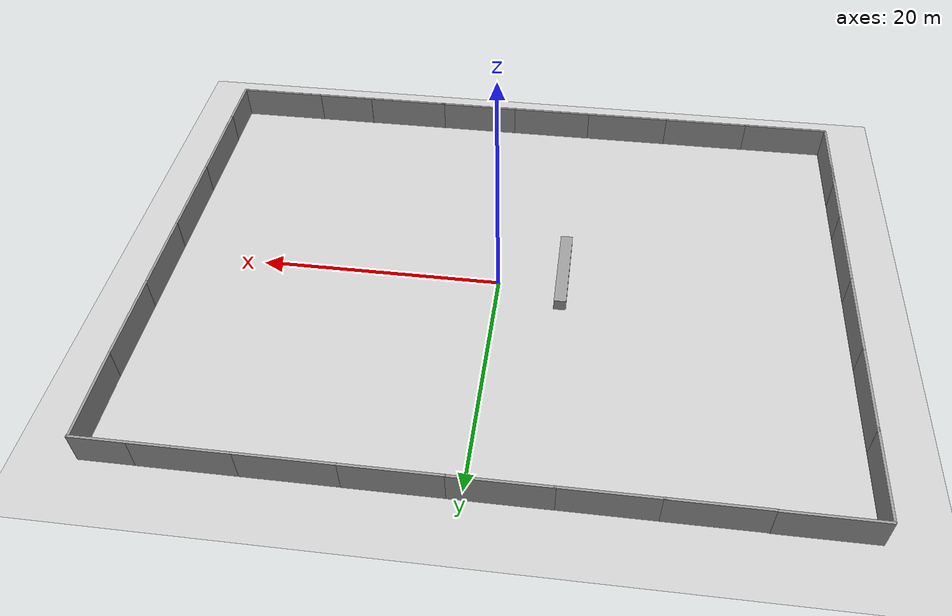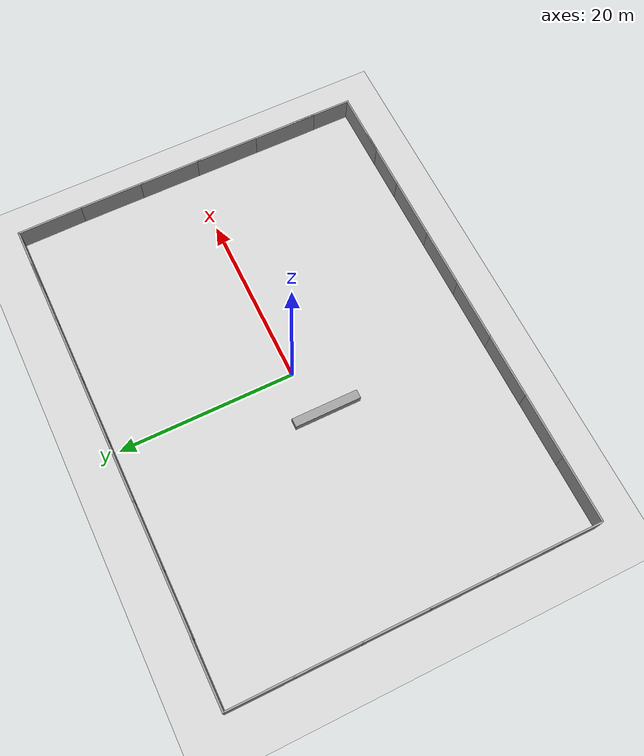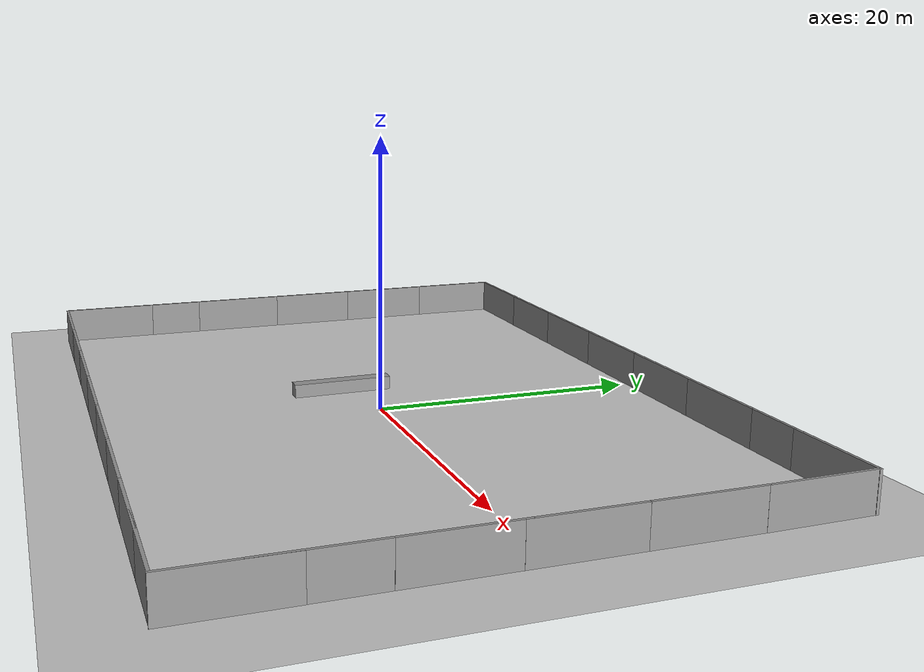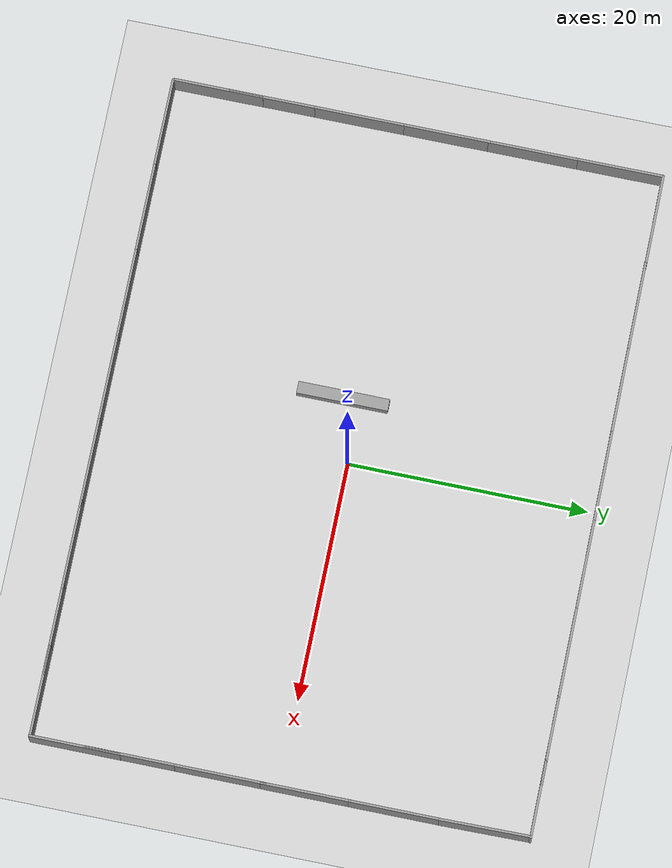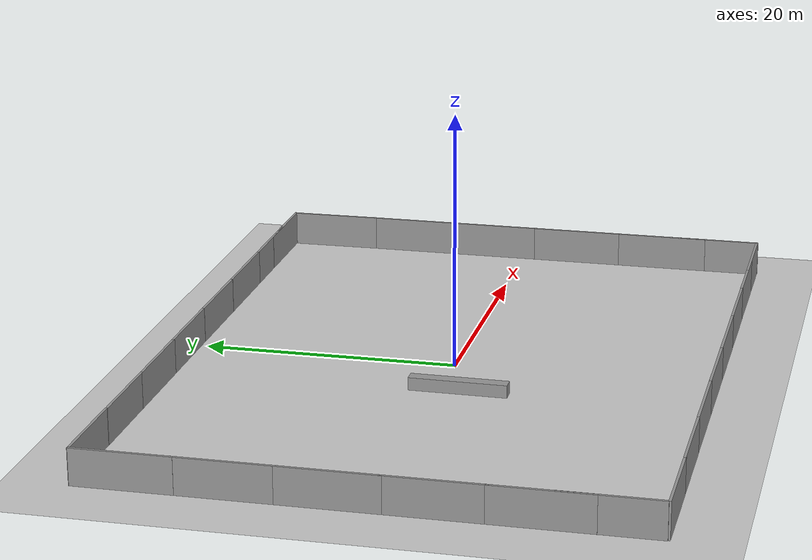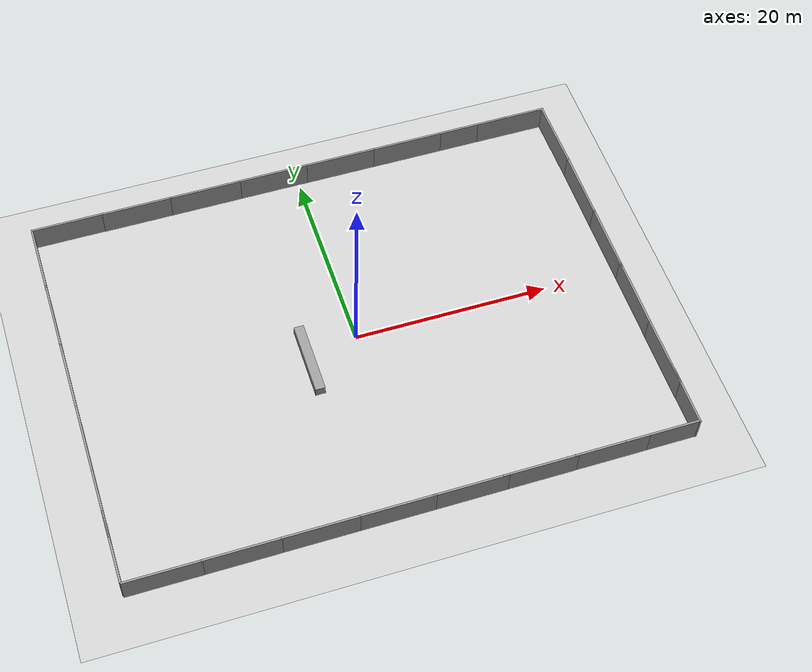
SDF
<sdf version="1.6">
 <world name="default">
  <light name="sun" type="directional">
   <pose>0 0 10 0 -0 0</pose>
   <diffuse>0.8 0.8 0.8 1</diffuse>
   <specular>0.2 0.2 0.2 1</specular>
   <attenuation>
    <range>1000</range>
    <constant>0.9</constant>
    <linear>0.01</linear>
    <quadratic>0.001</quadratic>
   </attenuation>
   <direction>-0.5 0.1 -0.9</direction>
  </light>
  <model name="ground_plane">
   <static>1</static>
   <link name="link">
    <collision name="collision">
     <geometry><plane><normal>0 0 1</normal><size>58 45</size></plane></geometry>
     <surface><friction><ode><mu>100</mu><mu2>50</mu2></ode></friction></surface>
    </collision>
    <visual name="visual">
     <cast_shadows>0</cast_shadows>
     <geometry><plane><normal>0 0 1</normal><size>58 45</size></plane></geometry>
     <material>
      <script><uri>file://media/materials/scripts/gazebo.material</uri><name>Gazebo/Grey</name></script>
     </material>
    </visual>
   </link>
  </model>
  <gravity>0 0 -9.8</gravity>
  <magnetic_field>6e-06 2.3e-05 -4.2e-05</magnetic_field>
  <atmosphere type="adiabatic"/>
  <physics name="default_physics" default="0" type="ode">
   <max_step_size>0.001</max_step_size>
   <real_time_factor>1</real_time_factor>
   <real_time_update_rate>1000</real_time_update_rate>
  </physics>
  <scene><ambient>0.4 0.4 0.4 1</ambient><background>1 1 1 1</background><shadows>1</shadows></scene>
  <audio><device>default</device></audio>
  <spherical_coordinates>
   <surface_model>EARTH_WGS84</surface_model>
   <latitude_deg>0</latitude_deg>
   <longitude_deg>0</longitude_deg>
   <elevation>0</elevation>
   <heading_deg>0</heading_deg>
  </spherical_coordinates>
  <model name="grey_wall_clone_5_clone_10_clone_clone">
   <static>1</static>
   <link name="link">
    <pose>0 0 1.4 0 -0 0</pose>
    <collision name="collision"><geometry><box><size>7.5 0.2 2.8</size></box></geometry></collision>
    <visual name="visual">
     <cast_shadows>0</cast_shadows>
     <geometry><box><size>7.5 0.2 2.8</size></box></geometry>
     <material>
      <script>
       <uri>model://grey_wall/materials/scripts</uri>
       <uri>model://grey_wall/materials/textures</uri>
       <name>vrc/grey_wall</name>
      </script>
     </material>
    </visual>
   </link>
   <pose>27.498 16.8556 0 0 0 -1.55831</pose>
  </model>
  <model name="grey_wall_clone_2_clone_0_clone_7_clone">
   <static>1</static>
   <link name="link">
    <pose>0 0 1.4 0 -0 0</pose>
    <collision name="collision"><geometry><box><size>7.5 0.2 2.8</size></box></geometry></collision>
    <visual name="visual">
     <cast_shadows>0</cast_shadows>
     <geometry><box><size>7.5 0.2 2.8</size></box></geometry>
     <material>
      <script>
       <uri>model://grey_wall/materials/scripts</uri>
       <uri>model://grey_wall/materials/textures</uri>
       <name>vrc/grey_wall</name>
      </script>
     </material>
    </visual>
   </link>
   <pose>-28.2859 16.96 0 0 0 -1.57184</pose>
  </model>
  <model name="grey_wall_clone_2_clone_0_clone_7_clone_clone">
   <static>1</static>
   <link name="link">
    <pose>0 0 1.4 0 -0 0</pose>
    <collision name="collision"><geometry><box><size>7.5 0.2 2.8</size></box></geometry></collision>
    <visual name="visual">
     <cast_shadows>0</cast_shadows>
     <geometry><box><size>7.5 0.2 2.8</size></box></geometry>
     <material>
      <script>
       <uri>model://grey_wall/materials/scripts</uri>
       <uri>model://grey_wall/materials/textures</uri>
       <name>vrc/grey_wall</name>
      </script>
     </material>
    </visual>
   </link>
   <pose>-28.2872 9.76464 0 0 0 -1.57184</pose>
  </model>
  <model name="grey_wall_clone_2_clone_0_clone_7_clone_clone_0">
   <static>1</static>
   <link name="link">
    <pose>0 0 1.4 0 -0 0</pose>
    <collision name="collision"><geometry><box><size>7.5 0.2 2.8</size></box></geometry></collision>
    <visual name="visual">
     <cast_shadows>0</cast_shadows>
     <geometry><box><size>7.5 0.2 2.8</size></box></geometry>
     <material>
      <script>
       <uri>model://grey_wall/materials/scripts</uri>
       <uri>model://grey_wall/materials/textures</uri>
       <name>vrc/grey_wall</name>
      </script>
     </material>
    </visual>
   </link>
   <pose>-28.2965 2.45082 0 0 0 -1.57184</pose>
  </model>
  <model name="grey_wall_clone_2_clone_0_clone_7_clone_clone_1">
   <static>1</static>
   <link name="link">
    <pose>0 0 1.4 0 -0 0</pose>
    <collision name="collision"><geometry><box><size>7.5 0.2 2.8</size></box></geometry></collision>
    <visual name="visual">
     <cast_shadows>0</cast_shadows>
     <geometry><box><size>7.5 0.2 2.8</size></box></geometry>
     <material>
      <script>
       <uri>model://grey_wall/materials/scripts</uri>
       <uri>model://grey_wall/materials/textures</uri>
       <name>vrc/grey_wall</name>
      </script>
     </material>
    </visual>
   </link>
   <pose>-28.3024 -4.79582 0 0 0 -1.57184</pose>
  </model>
  <model name="grey_wall_clone_2_clone_0_clone_7_clone_clone_2">
   <static>1</static>
   <link name="link">
    <pose>0 0 1.4 0 -0 0</pose>
    <collision name="collision"><geometry><box><size>7.5 0.2 2.8</size></box></geometry></collision>
    <visual name="visual">
     <cast_shadows>0</cast_shadows>
     <geometry><box><size>7.5 0.2 2.8</size></box></geometry>
     <material>
      <script>
       <uri>model://grey_wall/materials/scripts</uri>
       <uri>model://grey_wall/materials/textures</uri>
       <name>vrc/grey_wall</name>
      </script>
     </material>
    </visual>
   </link>
   <pose>-28.3103 -12.0016 0 0 0 -1.57184</pose>
  </model>
  <model name="grey_wall_clone_2_clone_0_clone_7_clone_clone_3">
   <static>1</static>
   <link name="link">
    <pose>0 0 1.4 0 -0 0</pose>
    <collision name="collision"><geometry><box><size>7.5 0.2 2.8</size></box></geometry></collision>
    <visual name="visual">
     <cast_shadows>0</cast_shadows>
     <geometry><box><size>7.5 0.2 2.8</size></box></geometry>
     <material>
      <script>
       <uri>model://grey_wall/materials/scripts</uri>
       <uri>model://grey_wall/materials/textures</uri>
       <name>vrc/grey_wall</name>
      </script>
     </material>
    </visual>
   </link>
   <pose>-28.3065 -16.6375 0 0 0 -1.57184</pose>
  </model>
  <model name="grey_wall_clone_0_clone">
   <static>1</static>
   <link name="link">
    <pose>0 0 1.4 0 -0 0</pose>
    <collision name="collision"><geometry><box><size>7.5 0.2 2.8</size></box></geometry></collision>
    <visual name="visual">
     <cast_shadows>0</cast_shadows>
     <geometry><box><size>7.5 0.2 2.8</size></box></geometry>
     <material>
      <script>
       <uri>model://grey_wall/materials/scripts</uri>
       <uri>model://grey_wall/materials/textures</uri>
       <name>vrc/grey_wall</name>
      </script>
     </material>
    </visual>
   </link>
   <pose>-24.6073 20.6515 0 0 -0 0</pose>
  </model>
  <model name="grey_wall_clone_0_clone_0">
   <static>1</static>
   <link name="link">
    <pose>0 0 1.4 0 -0 0</pose>
    <collision name="collision"><geometry><box><size>7.5 0.2 2.8</size></box></geometry></collision>
    <visual name="visual">
     <cast_shadows>0</cast_shadows>
     <geometry><box><size>7.5 0.2 2.8</size></box></geometry>
     <material>
      <script>
       <uri>model://grey_wall/materials/scripts</uri>
       <uri>model://grey_wall/materials/textures</uri>
       <name>vrc/grey_wall</name>
      </script>
     </material>
    </visual>
   </link>
   <pose>-17.2396 20.6205 0 0 -0 0</pose>
  </model>
  <model name="grey_wall_clone_0_clone_1">
   <static>1</static>
   <link name="link">
    <pose>0 0 1.4 0 -0 0</pose>
    <collision name="collision"><geometry><box><size>7.5 0.2 2.8</size></box></geometry></collision>
    <visual name="visual">
     <cast_shadows>0</cast_shadows>
     <geometry><box><size>7.5 0.2 2.8</size></box></geometry>
     <material>
      <script>
       <uri>model://grey_wall/materials/scripts</uri>
       <uri>model://grey_wall/materials/textures</uri>
       <name>vrc/grey_wall</name>
      </script>
     </material>
    </visual>
   </link>
   <pose>-10.0107 20.6188 0 0 -0 0</pose>
  </model>
  <model name="grey_wall_clone_0_clone_2">
   <static>1</static>
   <link name="link">
    <pose>0 0 1.4 0 -0 0</pose>
    <collision name="collision"><geometry><box><size>7.5 0.2 2.8</size></box></geometry></collision>
    <visual name="visual">
     <cast_shadows>0</cast_shadows>
     <geometry><box><size>7.5 0.2 2.8</size></box></geometry>
     <material>
      <script>
       <uri>model://grey_wall/materials/scripts</uri>
       <uri>model://grey_wall/materials/textures</uri>
       <name>vrc/grey_wall</name>
      </script>
     </material>
    </visual>
   </link>
   <pose>-2.66894 20.6258 0 0 -0 0</pose>
  </model>
  <model name="grey_wall_clone_0_clone_3">
   <static>1</static>
   <link name="link">
    <pose>0 0 1.4 0 -0 0</pose>
    <collision name="collision"><geometry><box><size>7.5 0.2 2.8</size></box></geometry></collision>
    <visual name="visual">
     <cast_shadows>0</cast_shadows>
     <geometry><box><size>7.5 0.2 2.8</size></box></geometry>
     <material>
      <script>
       <uri>model://grey_wall/materials/scripts</uri>
       <uri>model://grey_wall/materials/textures</uri>
       <name>vrc/grey_wall</name>
      </script>
     </material>
    </visual>
   </link>
   <pose>4.7293 20.619 0 0 -0 0</pose>
  </model>
  <model name="grey_wall_clone_0_clone_4">
   <static>1</static>
   <link name="link">
    <pose>0 0 1.4 0 -0 0</pose>
    <collision name="collision"><geometry><box><size>7.5 0.2 2.8</size></box></geometry></collision>
    <visual name="visual">
     <cast_shadows>0</cast_shadows>
     <geometry><box><size>7.5 0.2 2.8</size></box></geometry>
     <material>
      <script>
       <uri>model://grey_wall/materials/scripts</uri>
       <uri>model://grey_wall/materials/textures</uri>
       <name>vrc/grey_wall</name>
      </script>
     </material>
    </visual>
   </link>
   <pose>12.1441 20.6126 0 0 -0 0</pose>
  </model>
  <model name="grey_wall_clone_0_clone_5">
   <static>1</static>
   <link name="link">
    <pose>0 0 1.4 0 -0 0</pose>
    <collision name="collision"><geometry><box><size>7.5 0.2 2.8</size></box></geometry></collision>
    <visual name="visual">
     <cast_shadows>0</cast_shadows>
     <geometry><box><size>7.5 0.2 2.8</size></box></geometry>
     <material>
      <script>
       <uri>model://grey_wall/materials/scripts</uri>
       <uri>model://grey_wall/materials/textures</uri>
       <name>vrc/grey_wall</name>
      </script>
     </material>
    </visual>
   </link>
   <pose>19.5283 20.6131 0 0 -0 0</pose>
  </model>
  <model name="grey_wall_clone_0_clone_6">
   <static>1</static>
   <link name="link">
    <pose>0 0 1.4 0 -0 0</pose>
    <collision name="collision"><geometry><box><size>7.5 0.2 2.8</size></box></geometry></collision>
    <visual name="visual">
     <cast_shadows>0</cast_shadows>
     <geometry><box><size>7.5 0.2 2.8</size></box></geometry>
     <material>
      <script>
       <uri>model://grey_wall/materials/scripts</uri>
       <uri>model://grey_wall/materials/textures</uri>
       <name>vrc/grey_wall</name>
      </script>
     </material>
    </visual>
   </link>
   <pose>23.8328 20.6082 0 0 -0 0</pose>
  </model>
  <model name="grey_wall_clone_2_clone_0_clone_7_clone_0">
   <static>1</static>
   <link name="link">
    <pose>0 0 1.4 0 -0 0</pose>
    <collision name="collision"><geometry><box><size>7.5 0.2 2.8</size></box></geometry></collision>
    <visual name="visual">
     <cast_shadows>0</cast_shadows>
     <geometry><box><size>7.5 0.2 2.8</size></box></geometry>
     <material>
      <script>
       <uri>model://grey_wall/materials/scripts</uri>
       <uri>model://grey_wall/materials/textures</uri>
       <name>vrc/grey_wall</name>
      </script>
     </material>
    </visual>
   </link>
   <pose>27.5347 9.46897 0 0 0 -1.57184</pose>
  </model>
  <model name="grey_wall_clone_2_clone_0_clone_7_clone_1">
   <static>1</static>
   <link name="link">
    <pose>0 0 1.4 0 -0 0</pose>
    <collision name="collision"><geometry><box><size>7.5 0.2 2.8</size></box></geometry></collision>
    <visual name="visual">
     <cast_shadows>0</cast_shadows>
     <geometry><box><size>7.5 0.2 2.8</size></box></geometry>
     <material>
      <script>
       <uri>model://grey_wall/materials/scripts</uri>
       <uri>model://grey_wall/materials/textures</uri>
       <name>vrc/grey_wall</name>
      </script>
     </material>
    </visual>
   </link>
   <pose>27.5245 2.22548 0 0 0 -1.57184</pose>
  </model>
  <model name="grey_wall_clone_2_clone_0_clone_7_clone_2">
   <static>1</static>
   <link name="link">
    <pose>0 0 1.4 0 -0 0</pose>
    <collision name="collision"><geometry><box><size>7.5 0.2 2.8</size></box></geometry></collision>
    <visual name="visual">
     <cast_shadows>0</cast_shadows>
     <geometry><box><size>7.5 0.2 2.8</size></box></geometry>
     <material>
      <script>
       <uri>model://grey_wall/materials/scripts</uri>
       <uri>model://grey_wall/materials/textures</uri>
       <name>vrc/grey_wall</name>
      </script>
     </material>
    </visual>
   </link>
   <pose>27.511 -4.78607 0 0 0 -1.57184</pose>
  </model>
  <model name="grey_wall_clone_2_clone_0_clone_7_clone_3">
   <static>1</static>
   <link name="link">
    <pose>0 0 1.4 0 -0 0</pose>
    <collision name="collision"><geometry><box><size>7.5 0.2 2.8</size></box></geometry></collision>
    <visual name="visual">
     <cast_shadows>0</cast_shadows>
     <geometry><box><size>7.5 0.2 2.8</size></box></geometry>
     <material>
      <script>
       <uri>model://grey_wall/materials/scripts</uri>
       <uri>model://grey_wall/materials/textures</uri>
       <name>vrc/grey_wall</name>
      </script>
     </material>
    </visual>
   </link>
   <pose>27.4967 -12.2245 0 0 0 -1.57184</pose>
  </model>
  <model name="grey_wall_clone_2_clone_0_clone_7_clone_4">
   <static>1</static>
   <link name="link">
    <pose>0 0 1.4 0 -0 0</pose>
    <collision name="collision"><geometry><box><size>7.5 0.2 2.8</size></box></geometry></collision>
    <visual name="visual">
     <cast_shadows>0</cast_shadows>
     <geometry><box><size>7.5 0.2 2.8</size></box></geometry>
     <material>
      <script>
       <uri>model://grey_wall/materials/scripts</uri>
       <uri>model://grey_wall/materials/textures</uri>
       <name>vrc/grey_wall</name>
      </script>
     </material>
    </visual>
   </link>
   <pose>27.5064 -16.7705 0 0 0 -1.57184</pose>
  </model>
  <model name="grey_wall_clone_0_clone_5_clone">
   <static>1</static>
   <link name="link">
    <pose>0 0 1.4 0 -0 0</pose>
    <collision name="collision"><geometry><box><size>7.5 0.2 2.8</size></box></geometry></collision>
    <visual name="visual">
     <cast_shadows>0</cast_shadows>
     <geometry><box><size>7.5 0.2 2.8</size></box></geometry>
     <material>
      <script>
       <uri>model://grey_wall/materials/scripts</uri>
       <uri>model://grey_wall/materials/textures</uri>
       <name>vrc/grey_wall</name>
      </script>
     </material>
    </visual>
   </link>
   <pose>23.6713 -20.4027 0 0 -0 0</pose>
  </model>
  <model name="grey_wall_clone_0_clone_5_clone_0">
   <static>1</static>
   <link name="link">
    <pose>0 0 1.4 0 -0 0</pose>
    <collision name="collision"><geometry><box><size>7.5 0.2 2.8</size></box></geometry></collision>
    <visual name="visual">
     <cast_shadows>0</cast_shadows>
     <geometry><box><size>7.5 0.2 2.8</size></box></geometry>
     <material>
      <script>
       <uri>model://grey_wall/materials/scripts</uri>
       <uri>model://grey_wall/materials/textures</uri>
       <name>vrc/grey_wall</name>
      </script>
     </material>
    </visual>
   </link>
   <pose>18.6718 -20.4082 0 0 -0 0</pose>
  </model>
  <model name="grey_wall_clone_0_clone_5_clone_1">
   <static>1</static>
   <link name="link">
    <pose>0 0 1.4 0 -0 0</pose>
    <collision name="collision"><geometry><box><size>7.5 0.2 2.8</size></box></geometry></collision>
    <visual name="visual">
     <cast_shadows>0</cast_shadows>
     <geometry><box><size>7.5 0.2 2.8</size></box></geometry>
     <material>
      <script>
       <uri>model://grey_wall/materials/scripts</uri>
       <uri>model://grey_wall/materials/textures</uri>
       <name>vrc/grey_wall</name>
      </script>
     </material>
    </visual>
   </link>
   <pose>11.499 -20.4166 0 0 -0 0</pose>
  </model>
  <model name="grey_wall_clone_0_clone_5_clone_2">
   <static>1</static>
   <link name="link">
    <pose>0 0 1.4 0 -0 0</pose>
    <collision name="collision"><geometry><box><size>7.5 0.2 2.8</size></box></geometry></collision>
    <visual name="visual">
     <cast_shadows>0</cast_shadows>
     <geometry><box><size>7.5 0.2 2.8</size></box></geometry>
     <material>
      <script>
       <uri>model://grey_wall/materials/scripts</uri>
       <uri>model://grey_wall/materials/textures</uri>
       <name>vrc/grey_wall</name>
      </script>
     </material>
    </visual>
   </link>
   <pose>4.64984 -20.4208 0 0 -0 0</pose>
  </model>
  <model name="grey_wall_clone_0_clone_5_clone_3">
   <static>1</static>
   <link name="link">
    <pose>0 0 1.4 0 -0 0</pose>
    <collision name="collision"><geometry><box><size>7.5 0.2 2.8</size></box></geometry></collision>
    <visual name="visual">
     <cast_shadows>0</cast_shadows>
     <geometry><box><size>7.5 0.2 2.8</size></box></geometry>
     <material>
      <script>
       <uri>model://grey_wall/materials/scripts</uri>
       <uri>model://grey_wall/materials/textures</uri>
       <name>vrc/grey_wall</name>
      </script>
     </material>
    </visual>
   </link>
   <pose>-2.46062 -20.4222 0 0 -0 0</pose>
  </model>
  <model name="grey_wall_clone_0_clone_5_clone_4">
   <static>1</static>
   <link name="link">
    <pose>0 0 1.4 0 -0 0</pose>
    <collision name="collision"><geometry><box><size>7.5 0.2 2.8</size></box></geometry></collision>
    <visual name="visual">
     <cast_shadows>0</cast_shadows>
     <geometry><box><size>7.5 0.2 2.8</size></box></geometry>
     <material>
      <script>
       <uri>model://grey_wall/materials/scripts</uri>
       <uri>model://grey_wall/materials/textures</uri>
       <name>vrc/grey_wall</name>
      </script>
     </material>
    </visual>
   </link>
   <pose>-9.80235 -20.425 0 0 -0 0</pose>
  </model>
  <model name="grey_wall_clone_0_clone_5_clone_5">
   <static>1</static>
   <link name="link">
    <pose>0 0 1.4 0 -0 0</pose>
    <collision name="collision"><geometry><box><size>7.5 0.2 2.8</size></box></geometry></collision>
    <visual name="visual">
     <cast_shadows>0</cast_shadows>
     <geometry><box><size>7.5 0.2 2.8</size></box></geometry>
     <material>
      <script>
       <uri>model://grey_wall/materials/scripts</uri>
       <uri>model://grey_wall/materials/textures</uri>
       <name>vrc/grey_wall</name>
      </script>
     </material>
    </visual>
   </link>
   <pose>-17.2031 -20.4348 0 0 -0 0</pose>
  </model>
  <model name="grey_wall_clone_0_clone_5_clone_6">
   <static>1</static>
   <link name="link">
    <pose>0 0 1.4 0 -0 0</pose>
    <collision name="collision"><geometry><box><size>7.5 0.2 2.8</size></box></geometry></collision>
    <visual name="visual">
     <cast_shadows>0</cast_shadows>
     <geometry><box><size>7.5 0.2 2.8</size></box></geometry>
     <material>
      <script>
       <uri>model://grey_wall/materials/scripts</uri>
       <uri>model://grey_wall/materials/textures</uri>
       <name>vrc/grey_wall</name>
      </script>
     </material>
    </visual>
   </link>
   <pose>-24.5884 -20.4446 0 0 -0 0</pose>
  </model>
  <model name="unit_box">
   <pose>-5.30701 -1.44743 0.486375 0.003583 4e-06 -0.001164</pose>
   <link name="link">
    <inertial>
     <mass>1</mass>
     <inertia>
      <ixx>0.166667</ixx>
      <ixy>0</ixy>
      <ixz>0</ixz>
      <iyy>0.166667</iyy>
      <iyz>0</iyz>
      <izz>0.166667</izz>
     </inertia>
    </inertial>
    <collision name="collision"><geometry><box><size>1 7.61294 1</size></box></geometry></collision>
    <visual name="visual">
     <geometry><box><size>1 7.61294 1</size></box></geometry>
     <material>
      <script><name>Gazebo/Grey</name><uri>file://media/materials/scripts/gazebo.material</uri></script>
     </material>
    </visual>
   </link>
  </model>
 </world>
</sdf>
